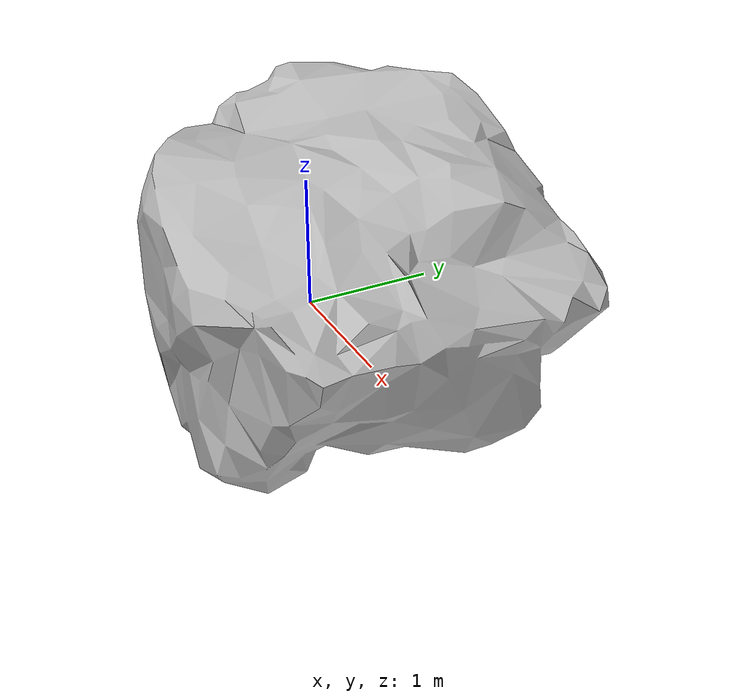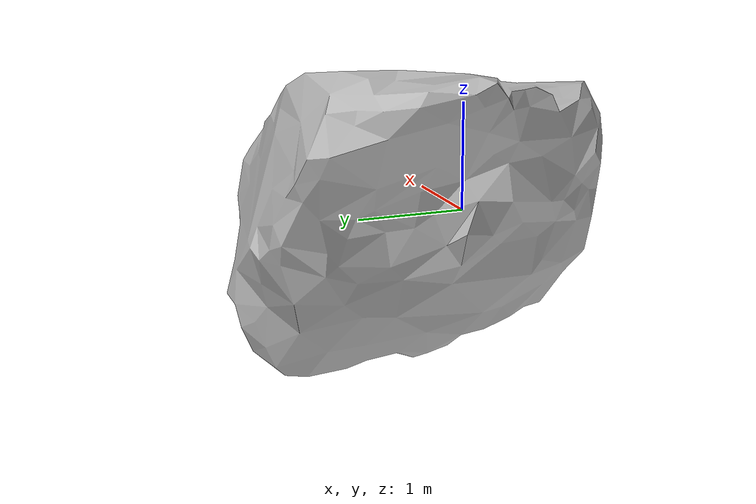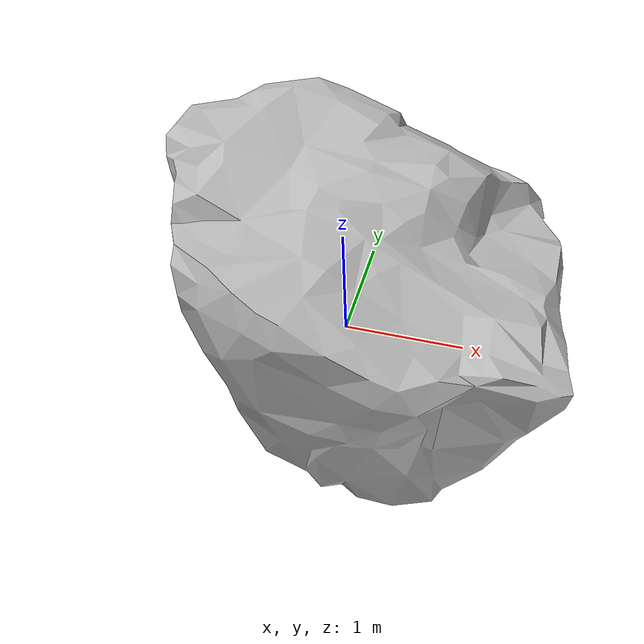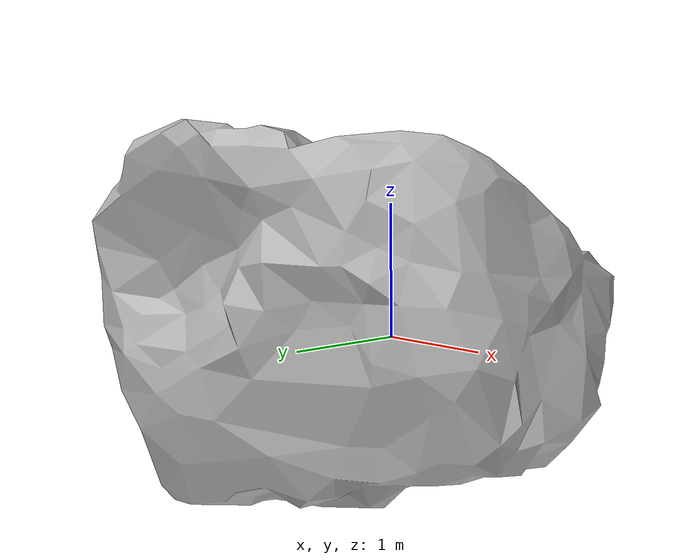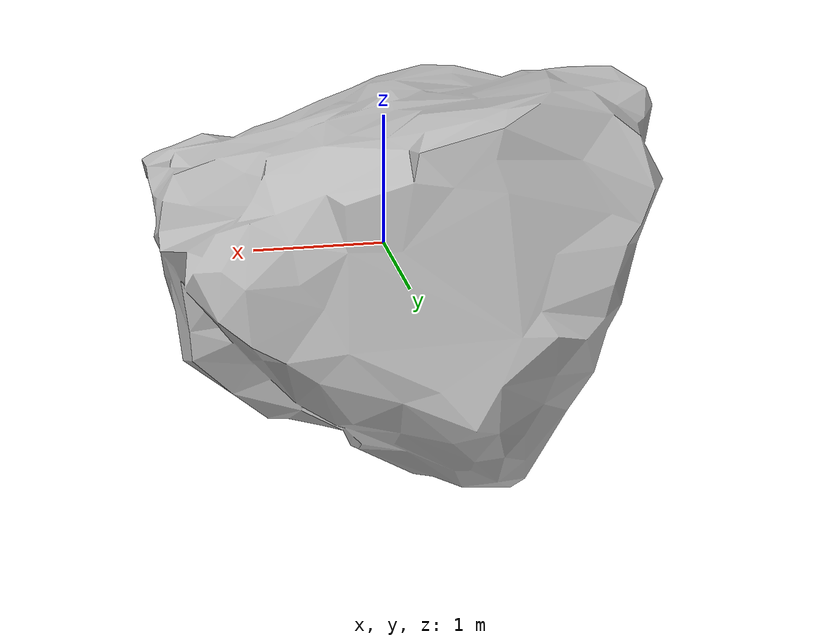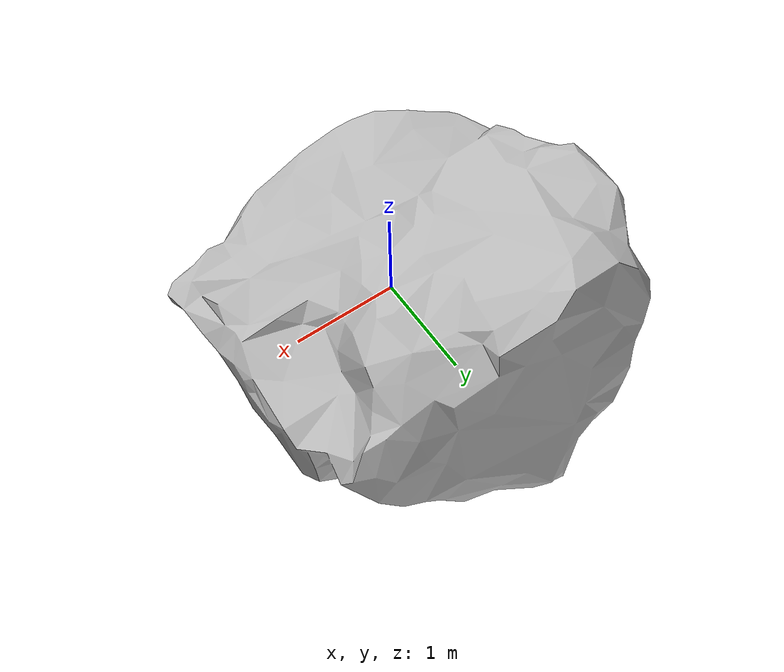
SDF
<?xml version="1.0" ?>
<sdf version="1.6">
  <model name="smars_rock_3">
    <static>true</static>
    <link name="link">
      <collision name="collision">
        <pose>0 0 0 0 0 0</pose>
        <geometry>
          <mesh>
            <scale>1 1 1</scale>
            <uri>model://smars_rock_3/rock3.obj</uri>
          </mesh>
        </geometry>
      </collision>
      <visual name="visual">
        <pose>0 0 0 0 0 0</pose>
        <geometry>
          <mesh>
            <scale>1 1 1</scale>
            <uri>model://smars_rock_3/rock3.obj</uri>
          </mesh>
        </geometry>
      </visual>
    </link>
  </model>
</sdf>
